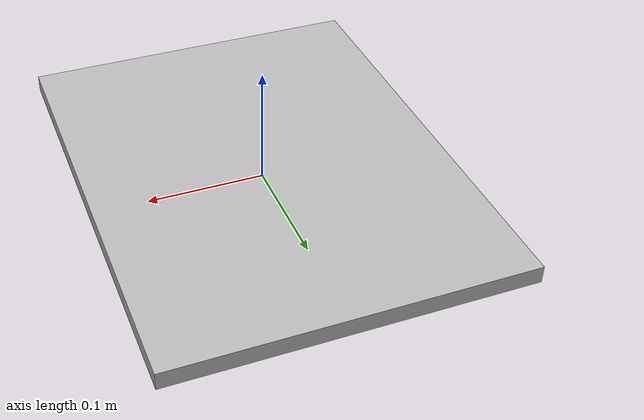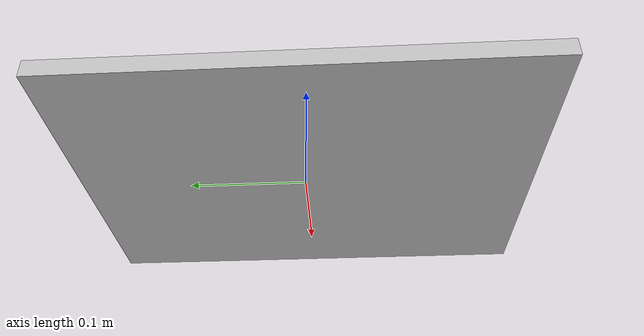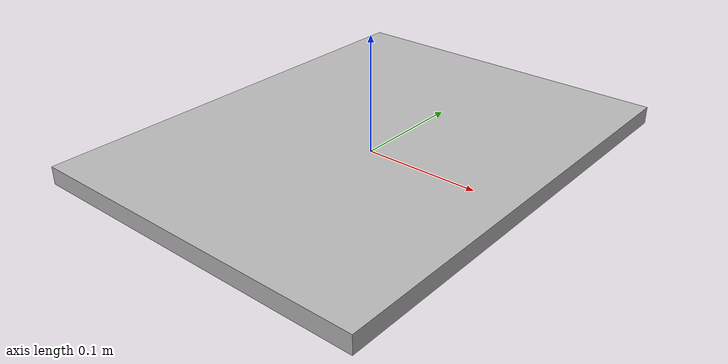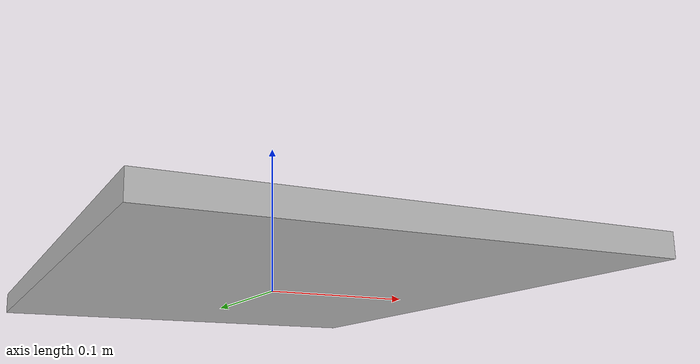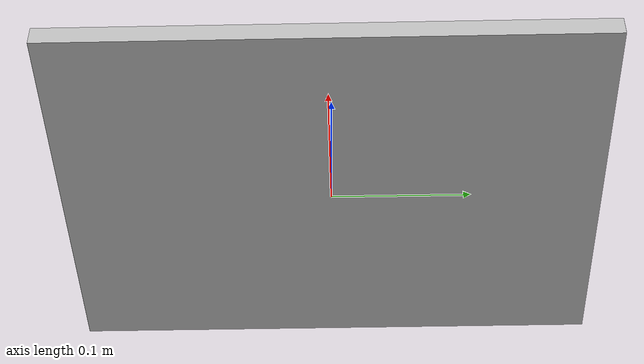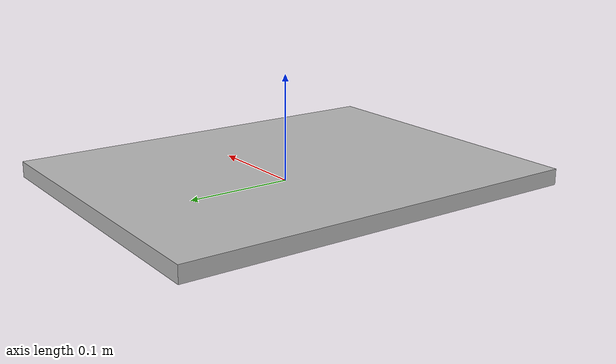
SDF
<?xml version='1.0' encoding='utf-8'?>
<sdf version="1.7">
    <model name="stairs">
        <link name="Component1">
            <pose>0.0 0.0 0.0 0.0 -0.0 0.0</pose>
            <inertial>
                <mass>14.040000000000001</mass>
                <pose>-0.0003881380479129268 -0.00036498856272436 0.0075 0.0 0.0 0.0</pose>
                <inertia>
                    <ixx>0.17822025</ixx>
                    <iyy>0.10556325000000019</iyy>
                    <izz>0.2832570000000002</izz>
                    <ixy>8.685899357619223e-18</ixy>
                    <iyz>2.913793338554793e-18</iyz>
                    <ixz>-2.9002408113987244e-18</ixz>
                </inertia>
            </inertial>
            <visual name="Component1_visual">
                <geometry>
                    <mesh>
                        <uri>model://stairs/meshes/Component1.stl</uri>
                        <scale>0.001 0.001 0.001</scale>
                    </mesh>
                </geometry>
            </visual>
            <collision name="Component1_collision">
                <geometry>
                    <mesh>
                        <uri>model://stairs/meshes/Component1.stl</uri>
                        <scale>0.001 0.001 0.001</scale>
                    </mesh>
                </geometry>
            </collision>
        </link>
    </model>
</sdf>
